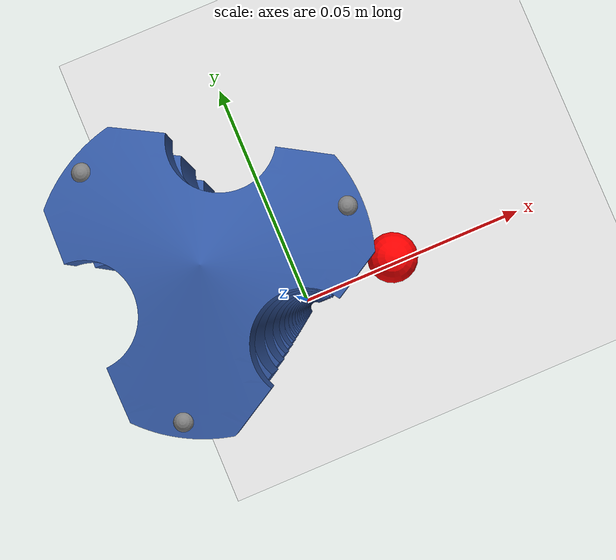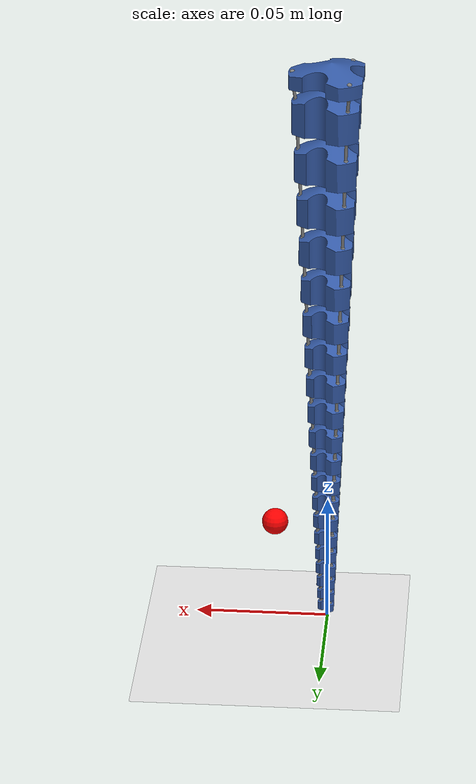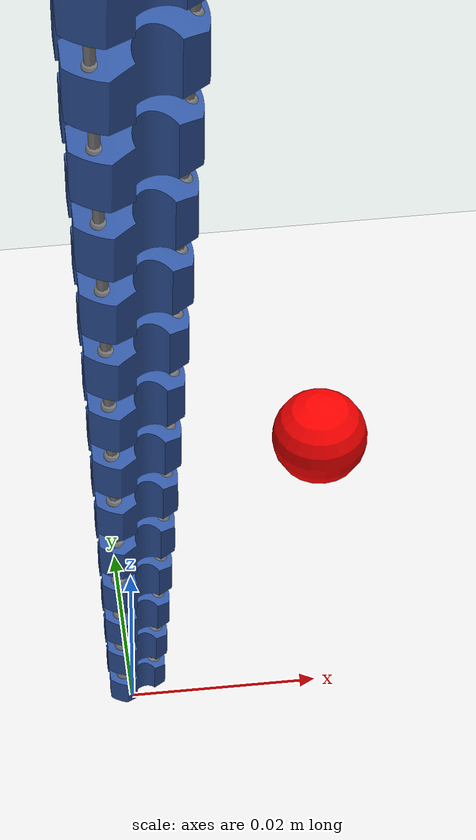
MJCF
<mujoco model="SpiRob">
  <compiler angle="radian" inertiafromgeom="true" autolimits="true"/>
  <option timestep="0.002" gravity="0.0 0.0 -9.81" integrator="implicit"/>
  <visual>
    <quality shadowsize="4096"/>
    <map znear="0.01" zfar="20"/>
    <scale connect="0"/>
  </visual>

  <!-- ===== DEFAULTS: edit these to tune global behavior ===== -->
  <default>
    <geom density="1200.0" margin="0.001"
          rgba="0.2 0.35 0.65 1.0"
          friction="0.6 0.01 0.001"/>
    <site size="0.001"/>
    <joint damping="0.01" stiffness="0.2" limited="false"/>
    <default class="cable_motor">
        <motor ctrllimited="true" ctrlrange="-10.0 0.0" gear="1.0"/>
    </default>
  </default>

  <asset>
    <mesh name="link_001" file="meshes/link_001.stl"/>
    <mesh name="link_002" file="meshes/link_002.stl"/>
    <mesh name="link_003" file="meshes/link_003.stl"/>
    <mesh name="link_004" file="meshes/link_004.stl"/>
    <mesh name="link_005" file="meshes/link_005.stl"/>
    <mesh name="link_006" file="meshes/link_006.stl"/>
    <mesh name="link_007" file="meshes/link_007.stl"/>
    <mesh name="link_008" file="meshes/link_008.stl"/>
    <mesh name="link_009" file="meshes/link_009.stl"/>
    <mesh name="link_010" file="meshes/link_010.stl"/>
    <mesh name="link_011" file="meshes/link_011.stl"/>
    <mesh name="link_012" file="meshes/link_012.stl"/>
    <mesh name="link_013" file="meshes/link_013.stl"/>
    <mesh name="link_014" file="meshes/link_014.stl"/>
    <mesh name="link_015" file="meshes/link_015.stl"/>
    <mesh name="link_016" file="meshes/link_016.stl"/>
    <mesh name="link_017" file="meshes/link_017.stl"/>
    <mesh name="link_018" file="meshes/link_018.stl"/>
    <mesh name="link_019" file="meshes/link_019.stl"/>
    <mesh name="link_020" file="meshes/link_020.stl"/>
    <mesh name="link_021" file="meshes/link_021.stl"/>
  </asset>

  <worldbody>
    <light name="light1" diffuse="1 1 1" active="true" pos="0 -0.5 0.01" dir="0 1 0"/>
    <light name="light2" diffuse="1 1 1" active="true" pos="-0.01 -0.5 0.5" dir="0 0 -1"/>
    <light name="light3" diffuse="1 1 1" active="true" pos="0 -0.1 1.5" dir="0 0 -1"/>
    <geom type="plane" size="2 2 0.05" rgba="0.9 0.9 0.9 1"/>
    <site name="target" type="sphere" size="0.005" rgba="1 0 0 1" pos="0.02 0.0 0.04"/>
    <body name="link_001" pos="0.0 0.0 0.22628" quat="0.0 0.0 -1.0 0.0">
      <joint name="j_001" type="ball" damping="50" stiffness="100" />
      <geom name="gmesh_001" type="mesh" mesh="link_001" group="1"/>
      <site name="c0_001_s1" pos="-0.014043787134233146 0.0 0.003887071611887229"/> <site name="c0_001_s2" pos="-0.013762963380968076 0.0 0.008989865749906125"/> <site name="c1_001_s1" pos="0.007021893567116547 -0.01216227642358695 0.0038870716118872264"/> <site name="c1_001_s2" pos="0.006881481690484012 -0.011919075919273306 0.008989865749906121"/> <site name="c2_001_s1" pos="0.0070218935671165555 0.012162276423586946 0.0038870716118872264"/> <site name="c2_001_s2" pos="0.006881481690484021 0.011919075919273303 0.008989865749906121"/>

    <body name="link_002" pos="-6.469455238969971e-35 0.0 0.008584200393390806" quat="0.9999999999999989 0.0 1.656909611338257e-16 0.0">
      <joint name="j_002" type="ball" damping="0.009151416593531596" stiffness="0.18302833187063192" />
      <geom name="gmesh_002" type="mesh" mesh="link_002" group="1"/>
      <site name="c0_002_s1" pos="-0.012813076370858354 0.0 0.0060753376579252534"/> <site name="c0_002_s2" pos="-0.012165259019073867 0.0 0.017846701535654565"/> <site name="c1_002_s1" pos="0.00640653818542915 -0.011096449637793441 0.006075337657925258"/> <site name="c1_002_s2" pos="0.006082629509536907 -0.010535423354135714 0.01784670153565457"/> <site name="c2_002_s1" pos="0.006406538185429157 0.011096449637793437 0.006075337657925258"/> <site name="c2_002_s2" pos="0.006082629509536914 0.01053542335413571 0.01784670153565457"/>

    <body name="link_003" pos="-1.2167588718591158e-34 0.0 0.019802434449997464" quat="0.9999999999999989 0.0 -1.3101234548921924e-16 0.0">
      <joint name="j_003" type="ball" damping="0.008374842566836545" stiffness="0.1674968513367309" />
      <geom name="gmesh_003" type="mesh" mesh="link_003" group="1"/>
      <site name="c0_003_s1" pos="-0.011797748755937759 0.0 0.005644371041508834"/> <site name="c0_003_s2" pos="-0.0111958856651136 0.0 0.016580708926176885"/> <site name="c1_003_s1" pos="0.005898874377968848 -0.010217150130108339 0.005644371041508833"/> <site name="c1_003_s2" pos="0.00559794283255677 -0.009695921403854396 0.016580708926176885"/> <site name="c2_003_s1" pos="0.005898874377968856 0.010217150130108333 0.005644371041508833"/> <site name="c2_003_s2" pos="0.005597942832556777 0.009695921403854392 0.016580708926176885"/>

    <body name="link_004" pos="4.1249183207540277e-35 0.0 0.018397707889558357" quat="0.9999999999999989 0.0 -2.8387745732565563e-16 0.0">
      <joint name="j_004" type="ball" damping="0.007664167323436269" stiffness="0.15328334646872538" />
      <geom name="gmesh_004" type="mesh" mesh="link_004" group="1"/>
      <site name="c0_004_s1" pos="-0.010854445501043577 0.0 0.0052439759315539925"/> <site name="c0_004_s2" pos="-0.010295276810827758 0.0 0.015404522115493542"/> <site name="c1_004_s1" pos="0.005427222750521765 -0.009400225547897434 0.005243975931553981"/> <site name="c1_004_s2" pos="0.0051476384054138565 -0.008915971257169664 0.015404522115493532"/> <site name="c2_004_s1" pos="0.005427222750521771 0.009400225547897429 0.005243975931553981"/> <site name="c2_004_s2" pos="0.005147638405413862 0.008915971257169659 0.015404522115493532"/>

    <body name="link_005" pos="1.190404145729528e-35 0.0 0.017092628507075464" quat="0.9999999999999989 0.0 3.3380155433229234e-16 0.0">
      <joint name="j_005" type="ball" damping="0.00701379880192973" stiffness="0.1402759760385946" />
      <geom name="gmesh_005" type="mesh" mesh="link_005" group="1"/>
      <site name="c0_005_s1" pos="-0.009978057409537241 0.0 0.004871983675149487"/> <site name="c0_005_s2" pos="-0.009458554504500285 0.0 0.01431177054390545"/> <site name="c1_005_s1" pos="0.004989028704768607 -0.008641251197078793 0.004871983675149488"/> <site name="c1_005_s2" pos="0.004729277252250129 -0.008191348483976972 0.01431177054390545"/> <site name="c2_005_s1" pos="0.004989028704768613 0.008641251197078788 0.004871983675149488"/> <site name="c2_005_s2" pos="0.0047292772522501345 0.008191348483976969 0.01431177054390545"/>

    <body name="link_006" pos="4.550835795716519e-35 0.0 0.01588012762430599" quat="0.9999999999999989 0.0 6.270311827459235e-20 0.0">
      <joint name="j_006" type="ball" damping="0.006418619473967176" stiffness="0.1283723894793435" />
      <geom name="gmesh_006" type="mesh" mesh="link_006" group="1"/>
      <site name="c0_006_s1" pos="-0.009163837716189213 0.0 0.004526379457254508"/> <site name="c0_006_s2" pos="-0.008681186821988264 0.0 0.01329653556051505"/> <site name="c1_006_s1" pos="0.004581918858094592 -0.007936116258377823 0.004526379457254509"/> <site name="c1_006_s2" pos="0.004340593410994118 -0.007518128322840526 0.01329653556051505"/> <site name="c2_006_s1" pos="0.004581918858094598 0.00793611625837782 0.004526379457254509"/> <site name="c2_006_s2" pos="0.0043405934109941235 0.007518128322840523 0.01329653556051505"/>

    <body name="link_007" pos="2.0482903766373542e-35 0.0 0.014753637994288443" quat="0.9999999999999989 0.0 -5.672128456715344e-17 0.0">
      <joint name="j_007" type="ball" damping="0.005873946076162826" stiffness="0.11747892152325652" />
      <geom name="gmesh_007" type="mesh" mesh="link_007" group="1"/>
      <site name="c0_007_s1" pos="-0.008407376377358998 0.0 0.004205291387891803"/> <site name="c0_007_s2" pos="-0.007958963320541919 0.0 0.012353318366142216"/> <site name="c1_007_s1" pos="0.004203688188679483 -0.0072810015219700675 0.004205291387891802"/> <site name="c1_007_s2" pos="0.003979481660270944 -0.006892664423377842 0.012353318366142216"/> <site name="c2_007_s1" pos="0.004203688188679488 0.007281001521970064 0.004205291387891802"/> <site name="c2_007_s2" pos="0.003979481660270949 0.006892664423377839 0.012353318366142216"/>

    <body name="link_008" pos="3.714119074183758e-36 0.0 0.013707058231279406" quat="0.9999999999999989 0.0 9.365505275997311e-17 0.0">
      <joint name="j_008" type="ball" damping="0.005375492759090629" stiffness="0.10750985518181258" />
      <geom name="gmesh_008" type="mesh" mesh="link_008" group="1"/>
      <site name="c0_008_s1" pos="-0.007704576184954142 0.0 0.003906980363463291"/> <site name="c0_008_s2" pos="-0.007287972233858338 0.0 0.011477010230276556"/> <site name="c1_008_s1" pos="0.0038522880924770557 -0.006672358701562873 0.0039069803634632925"/> <site name="c1_008_s2" pos="0.0036439861169291544 -0.0063115690965969366 0.011477010230276558"/> <site name="c2_008_s1" pos="0.003852288092477061 0.006672358701562869 0.0039069803634632925"/> <site name="c2_008_s2" pos="0.003643986116929159 0.006311569096596933 0.011477010230276558"/>

    <body name="link_009" pos="-1.3260761546955404e-36 0.0 0.012734719763926719" quat="0.9999999999999989 0.0 1.464790115601984e-17 0.0">
      <joint name="j_009" type="ball" damping="0.004919337363395092" stiffness="0.09838674726790185" />
      <geom name="gmesh_009" type="mesh" mesh="link_009" group="1"/>
      <site name="c0_009_s1" pos="-0.00705163057479501 0.0 0.0036298306472741363"/> <site name="c0_009_s2" pos="-0.0066645792848513425 0.0 0.010662864820750751"/> <site name="c1_009_s1" pos="0.0035258152873974885 -0.006106891215875532 0.003629830647274138"/> <site name="c1_009_s2" pos="0.003332289642425655 -0.005771694966216779 0.010662864820750753"/> <site name="c2_009_s1" pos="0.003525815287397493 0.00610689121587553 0.003629830647274138"/> <site name="c2_009_s2" pos="0.0033322896424256595 0.0057716949662167776 0.010662864820750753"/>

    <body name="link_010" pos="-2.4004641316690358e-35 0.0 0.011831356132687001" quat="0.9999999999999989 0.0 -2.0313861749255114e-16 0.0">
      <joint name="j_010" type="ball" damping="0.004501890557655382" stiffness="0.09003781115310765" />
      <geom name="gmesh_010" type="mesh" mesh="link_010" group="1"/>
      <site name="c0_010_s1" pos="-0.006445003009188863 0.0 0.003372341118246971"/> <site name="c0_010_s2" pos="-0.006085408001381059 0.0 0.009906472496266557"/> <site name="c1_010_s1" pos="0.003222501504594414 -0.005581536333424696 0.003372341118246968"/> <site name="c1_010_s2" pos="0.0030427040006905126 -0.005270117921589074 0.009906472496266553"/> <site name="c2_010_s1" pos="0.0032225015045944183 0.005581536333424694 0.003372341118246968"/> <site name="c2_010_s2" pos="0.003042704000690517 0.005270117921589072 0.009906472496266553"/>

    <body name="link_011" pos="2.1201211708008e-34 0.0 0.01099207446519479" quat="0.9999999999999989 0.0 1.3718854255569317e-16 0.0">
      <joint name="j_011" type="ball" damping="0.004119867595159067" stiffness="0.08239735190318134" />
      <geom name="gmesh_011" type="mesh" mesh="link_011" group="1"/>
      <site name="c0_011_s1" pos="-0.005881407822043716 0.0 0.003133117140426245"/> <site name="c0_011_s2" pos="-0.0055473214283280016 0.0 0.009203736422532638"/> <site name="c1_011_s1" pos="0.0029407039110218446 -0.005093448583906358 0.003133117140426245"/> <site name="c1_011_s2" pos="0.0027736607141639878 -0.0048041212798898185 0.009203736422532638"/> <site name="c2_011_s1" pos="0.0029407039110218476 0.005093448583906355 0.003133117140426245"/> <site name="c2_011_s2" pos="0.002773660714163991 0.004804121279889816 0.009203736422532638"/>

    <body name="link_012" pos="1.1996541848813755e-37 0.0 0.010212328975084867" quat="0.9999999999999989 0.0 1.5364155078561523e-17 0.0">
      <joint name="j_012" type="ball" damping="0.0037702624673491797" stiffness="0.0754052493469836" />
      <geom name="gmesh_012" type="mesh" mesh="link_012" group="1"/>
      <site name="c0_012_s1" pos="-0.005357792422773514 0.0 0.0029108630092366246"/> <site name="c0_012_s2" pos="-0.005047405136958841 0.0 0.008550850382654157"/> <site name="c1_012_s1" pos="0.0026788962113867432 -0.00463998434632563 0.002910863009236625"/> <site name="c1_012_s2" pos="0.002523702568479407 -0.004371181071798421 0.008550850382654157"/> <site name="c2_012_s1" pos="0.0026788962113867467 0.0046399843463256285 0.002910863009236625"/> <site name="c2_012_s2" pos="0.0025237025684794103 0.00437118107179842 0.008550850382654157"/>

    <body name="link_013" pos="-7.041604796568327e-36 0.0 0.009487896340730412" quat="0.9999999999999989 0.0 -7.460611667773275e-17 0.0">
      <joint name="j_013" type="ball" damping="0.0034503242505668657" stiffness="0.06900648501133731" />
      <geom name="gmesh_013" type="mesh" mesh="link_013" group="1"/>
      <site name="c0_013_s1" pos="-0.004871320762606051 0.0 0.002704374933581111"/> <site name="c0_013_s2" pos="-0.004582951439557895 0.0 0.007944278161587853"/> <site name="c1_013_s1" pos="0.002435660381303012 -0.004218687530399415 0.0027043749335811103"/> <site name="c1_013_s2" pos="0.0022914757197789342 -0.00396895237096759 0.007944278161587853"/> <site name="c2_013_s1" pos="0.002435660381303015 0.004218687530399414 0.0027043749335811103"/> <site name="c2_013_s2" pos="0.002291475719778937 0.0039689523709675895 0.007944278161587853"/>

    <body name="link_014" pos="1.913567427110138e-35 0.0 0.008814852830541259" quat="0.9999999999999989 0.0 -3.0561124878616134e-17 0.0">
      <joint name="j_014" type="ball" damping="0.003157535459970208" stiffness="0.06315070919940417" />
      <geom name="gmesh_014" type="mesh" mesh="link_014" group="1"/>
      <site name="c0_014_s1" pos="-0.0044193579737424465 0.0 0.0025125345157688836"/> <site name="c0_014_s2" pos="-0.00415144472382633 0.0 0.007380734393003408"/> <site name="c1_014_s1" pos="0.002209678986871211 -0.003827276273678272 0.0025125345157688823"/> <site name="c1_014_s2" pos="0.002075722361913153 -0.003595256593240466 0.007380734393003407"/> <site name="c2_014_s1" pos="0.0022096789868712133 0.003827276273678271 0.0025125345157688823"/> <site name="c2_014_s2" pos="0.0020757223619131556 0.0035952565932404652 0.007380734393003407"/>

    <body name="link_015" pos="6.361033776815479e-35 0.0 0.008189553050926335" quat="0.9999999999999989 0.0 3.460574972380459e-17 0.0">
      <joint name="j_015" type="ball" damping="0.002889592240303578" stiffness="0.057791844806071566" />
      <geom name="gmesh_015" type="mesh" mesh="link_015" group="1"/>
      <site name="c0_015_s1" pos="-0.0039994560981695786 0.0 0.002334302693957652"/> <site name="c0_015_s2" pos="-0.003750547827616025 0.0 0.006857166764812157"/> <site name="c1_015_s1" pos="0.001999728049084778 -0.0034636305823354378 0.0023343026939576512"/> <site name="c1_015_s2" pos="0.0018752739138080017 -0.00324806969682401 0.006857166764812156"/> <site name="c2_015_s1" pos="0.0019997280490847806 0.0034636305823354356 0.0023343026939576512"/> <site name="c2_015_s2" pos="0.001875273913808004 0.0032480696968240083 0.006857166764812156"/>

    <body name="link_016" pos="3.5098889490189586e-35 0.0 0.007608610201813054" quat="0.9999999999999989 0.0 3.7669043585127384e-17 0.0">
      <joint name="j_016" type="ball" damping="0.0026443862376454305" stiffness="0.052887724752908614" />
      <geom name="gmesh_016" type="mesh" mesh="link_016" group="1"/>
      <site name="c0_016_s1" pos="-0.003609340828828624 0.0 0.002168714114301612"/> <site name="c0_016_s2" pos="-0.0033780893801997913 0.0 0.006370739486983523"/> <site name="c1_016_s1" pos="0.001804670414414302 -0.0031257808486819623 0.002168714114301612"/> <site name="c1_016_s2" pos="0.0016890446900998857 -0.0029255112195074404 0.006370739486983523"/> <site name="c2_016_s1" pos="0.001804670414414304 0.003125780848681961 0.002168714114301612"/> <site name="c2_016_s2" pos="0.0016890446900998878 0.0029255112195074396 0.006370739486983523"/>

    <body name="link_017" pos="7.547270758475354e-36 0.0 0.0070688777327823915" quat="0.9999999999999989 0.0 -1.1446290600572686e-16 0.0">
      <joint name="j_017" type="ball" damping="0.002419988009489498" stiffness="0.048399760189789955" />
      <geom name="gmesh_017" type="mesh" mesh="link_017" group="1"/>
      <site name="c0_017_s1" pos="-0.0032468991913262107 0.0 0.0020148719023225527"/> <site name="c0_017_s2" pos="-0.0030320520415147373 0.0 0.005918817932105997"/> <site name="c1_017_s1" pos="0.0016234495956630964 -0.002811897183215643 0.002014871902322551"/> <site name="c1_017_s2" pos="0.00151602602075736 -0.0026258340935482257 0.0059188179321059955"/> <site name="c2_017_s1" pos="0.0016234495956630984 0.0028118971832156417 0.002014871902322551"/> <site name="c2_017_s2" pos="0.001516026020757362 0.002625834093548225 0.0059188179321059955"/>

    <body name="link_018" pos="1.3493208599798276e-34 0.0 0.006567432300463999" quat="0.9999999999999989 0.0 9.93505334659414e-17 0.0">
      <joint name="j_018" type="ball" damping="0.002214631842618969" stiffness="0.04429263685237938" />
      <geom name="gmesh_018" type="mesh" mesh="link_018" group="1"/>
      <site name="c0_018_s1" pos="-0.002910168099468794 0.0 0.0018719428051844347"/> <site name="c0_018_s2" pos="-0.0027105615756791808 0.0 0.0054989543655012685"/> <site name="c1_018_s1" pos="0.0014550840497343893 -0.0025202795034230487 0.0018719428051844345"/> <site name="c1_018_s2" pos="0.0013552807878395828 -0.0023474151830601407 0.0054989543655012685"/> <site name="c2_018_s1" pos="0.0014550840497343912 0.0025202795034230483 0.0018719428051844345"/> <site name="c2_018_s2" pos="0.0013552807878395847 0.0023474151830601402 0.0054989543655012685"/>

    <body name="link_019" pos="1.0404935640692325e-35 0.0 0.006101557934883262" quat="0.9999999999999989 0.0 -1.9838998241264484e-17 0.0">
      <joint name="j_019" type="ball" damping="0.0020267018593106683" stiffness="0.04053403718621337" />
      <geom name="gmesh_019" type="mesh" mesh="link_019" group="1"/>
      <site name="c0_019_s1" pos="-0.0025973237226338207 0.0 0.0017391526785610904"/> <site name="c0_019_s2" pos="-0.0024118766996021656 0.0 0.005108874687602738"/> <site name="c1_019_s1" pos="0.0012986618613169034 -0.0022493483256528506 0.0017391526785610898"/> <site name="c1_019_s2" pos="0.001205938349801076 -0.0020887464926512395 0.005108874687602738"/> <site name="c2_019_s1" pos="0.001298661861316905 0.0022493483256528497 0.0017391526785610898"/> <site name="c2_019_s2" pos="0.0012059383498010776 0.0020887464926512386 0.005108874687602738"/>

    <body name="link_020" pos="-1.2294460807762836e-35 0.0 0.005668731329001503" quat="0.9999999999999989 0.0 1.502458610717566e-17 0.0">
      <joint name="j_020" type="ball" damping="0.0018547193025436988" stiffness="0.03709438605087398" />
      <geom name="gmesh_020" type="mesh" mesh="link_020" group="1"/>
      <site name="c0_020_s1" pos="-0.0023066716073883893 0.0 0.0016157822936519741"/> <site name="c0_020_s2" pos="-0.0021343796517028575 0.0 0.004746466116790304"/> <site name="c1_020_s1" pos="0.0011533358036941884 -0.001997636210186625 0.001615782293651974"/> <site name="c1_020_s2" pos="0.0010671898258514227 -0.001848426999695252 0.004746466116790304"/> <site name="c2_020_s1" pos="0.0011533358036941899 0.0019976362101866243 0.001615782293651974"/> <site name="c2_020_s2" pos="0.001067189825851424 0.001848426999695251 0.004746466116790304"/>

    <body name="link_021" pos="7.551021878358898e-36 0.0 0.005266608171773102" quat="0.9999999999999989 0.0 -4.435904301331992e-16 0.0">
      <joint name="j_021" type="ball" damping="0.0016973309001641753" stiffness="0.0339466180032835" />
      <geom name="gmesh_021" type="mesh" mesh="link_021" group="1"/>
      <site name="c0_021_s1" pos="-0.0020366374998512533 0.0 0.0015011634416360086"/> <site name="c0_021_s2" pos="-0.0018765674296572542 0.0 0.004409765745968967"/> <site name="c1_021_s1" pos="0.0010183187499256225 -0.0017637798131712077 0.0015011634416360036"/> <site name="c1_021_s2" pos="0.0009382837148286231 -0.0016251550659976462 0.0044097657459689615"/> <site name="c2_021_s1" pos="0.0010183187499256236 0.001763779813171207 0.0015011634416360036"/> <site name="c2_021_s2" pos="0.0009382837148286242 0.0016251550659976456 0.0044097657459689615"/>
            <site name="tip_site" type="sphere" size="0.001" rgba="0 1 0 1" pos="0 0 0.005"/>
    </body>
    </body>
    </body>
    </body>
    </body>
    </body>
    </body>
    </body>
    </body>
    </body>
    </body>
    </body>
    </body>
    </body>
    </body>
    </body>
    </body>
    </body>
    </body>
    </body>
    </body>
  </worldbody>
  <tendon>
    <spatial name="cable_0" width="0.0006">
      <site site="c0_021_s2"/>
      <site site="c0_021_s1"/>
      <site site="c0_020_s2"/>
      <site site="c0_020_s1"/>
      <site site="c0_019_s2"/>
      <site site="c0_019_s1"/>
      <site site="c0_018_s2"/>
      <site site="c0_018_s1"/>
      <site site="c0_017_s2"/>
      <site site="c0_017_s1"/>
      <site site="c0_016_s2"/>
      <site site="c0_016_s1"/>
      <site site="c0_015_s2"/>
      <site site="c0_015_s1"/>
      <site site="c0_014_s2"/>
      <site site="c0_014_s1"/>
      <site site="c0_013_s2"/>
      <site site="c0_013_s1"/>
      <site site="c0_012_s2"/>
      <site site="c0_012_s1"/>
      <site site="c0_011_s2"/>
      <site site="c0_011_s1"/>
      <site site="c0_010_s2"/>
      <site site="c0_010_s1"/>
      <site site="c0_009_s2"/>
      <site site="c0_009_s1"/>
      <site site="c0_008_s2"/>
      <site site="c0_008_s1"/>
      <site site="c0_007_s2"/>
      <site site="c0_007_s1"/>
      <site site="c0_006_s2"/>
      <site site="c0_006_s1"/>
      <site site="c0_005_s2"/>
      <site site="c0_005_s1"/>
      <site site="c0_004_s2"/>
      <site site="c0_004_s1"/>
      <site site="c0_003_s2"/>
      <site site="c0_003_s1"/>
      <site site="c0_002_s2"/>
      <site site="c0_002_s1"/>
      <site site="c0_001_s2"/>
      <site site="c0_001_s1"/>
    </spatial>
    <spatial name="cable_1" width="0.0006">
      <site site="c1_021_s2"/>
      <site site="c1_021_s1"/>
      <site site="c1_020_s2"/>
      <site site="c1_020_s1"/>
      <site site="c1_019_s2"/>
      <site site="c1_019_s1"/>
      <site site="c1_018_s2"/>
      <site site="c1_018_s1"/>
      <site site="c1_017_s2"/>
      <site site="c1_017_s1"/>
      <site site="c1_016_s2"/>
      <site site="c1_016_s1"/>
      <site site="c1_015_s2"/>
      <site site="c1_015_s1"/>
      <site site="c1_014_s2"/>
      <site site="c1_014_s1"/>
      <site site="c1_013_s2"/>
      <site site="c1_013_s1"/>
      <site site="c1_012_s2"/>
      <site site="c1_012_s1"/>
      <site site="c1_011_s2"/>
      <site site="c1_011_s1"/>
      <site site="c1_010_s2"/>
      <site site="c1_010_s1"/>
      <site site="c1_009_s2"/>
      <site site="c1_009_s1"/>
      <site site="c1_008_s2"/>
      <site site="c1_008_s1"/>
      <site site="c1_007_s2"/>
      <site site="c1_007_s1"/>
      <site site="c1_006_s2"/>
      <site site="c1_006_s1"/>
      <site site="c1_005_s2"/>
      <site site="c1_005_s1"/>
      <site site="c1_004_s2"/>
      <site site="c1_004_s1"/>
      <site site="c1_003_s2"/>
      <site site="c1_003_s1"/>
      <site site="c1_002_s2"/>
      <site site="c1_002_s1"/>
      <site site="c1_001_s2"/>
      <site site="c1_001_s1"/>
    </spatial>
    <spatial name="cable_2" width="0.0006">
      <site site="c2_021_s2"/>
      <site site="c2_021_s1"/>
      <site site="c2_020_s2"/>
      <site site="c2_020_s1"/>
      <site site="c2_019_s2"/>
      <site site="c2_019_s1"/>
      <site site="c2_018_s2"/>
      <site site="c2_018_s1"/>
      <site site="c2_017_s2"/>
      <site site="c2_017_s1"/>
      <site site="c2_016_s2"/>
      <site site="c2_016_s1"/>
      <site site="c2_015_s2"/>
      <site site="c2_015_s1"/>
      <site site="c2_014_s2"/>
      <site site="c2_014_s1"/>
      <site site="c2_013_s2"/>
      <site site="c2_013_s1"/>
      <site site="c2_012_s2"/>
      <site site="c2_012_s1"/>
      <site site="c2_011_s2"/>
      <site site="c2_011_s1"/>
      <site site="c2_010_s2"/>
      <site site="c2_010_s1"/>
      <site site="c2_009_s2"/>
      <site site="c2_009_s1"/>
      <site site="c2_008_s2"/>
      <site site="c2_008_s1"/>
      <site site="c2_007_s2"/>
      <site site="c2_007_s1"/>
      <site site="c2_006_s2"/>
      <site site="c2_006_s1"/>
      <site site="c2_005_s2"/>
      <site site="c2_005_s1"/>
      <site site="c2_004_s2"/>
      <site site="c2_004_s1"/>
      <site site="c2_003_s2"/>
      <site site="c2_003_s1"/>
      <site site="c2_002_s2"/>
      <site site="c2_002_s1"/>
      <site site="c2_001_s2"/>
      <site site="c2_001_s1"/>
    </spatial>
  </tendon>
  <actuator>
    <motor class="cable_motor" name="motor_c0" tendon="cable_0"/>
    <motor class="cable_motor" name="motor_c1" tendon="cable_1"/>
    <motor class="cable_motor" name="motor_c2" tendon="cable_2"/>
  </actuator>
</mujoco>
